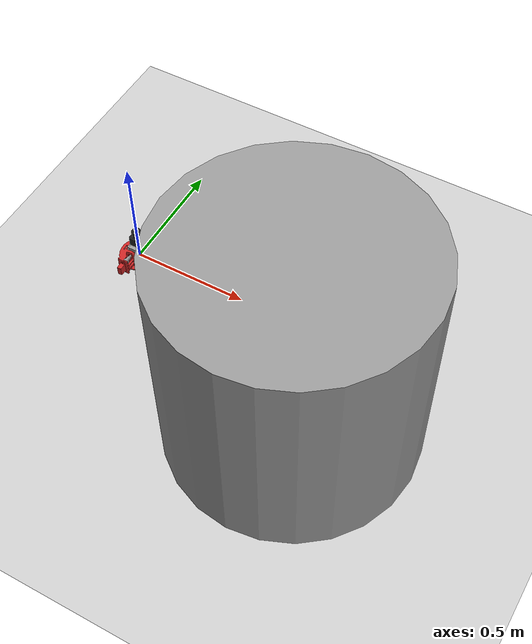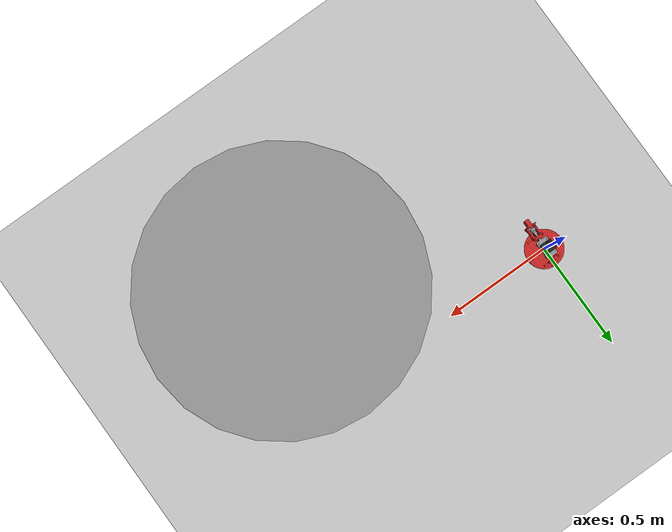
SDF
<sdf version="1.7">
 <world name="default">
  <light name="sun" type="directional">
   <pose>0 0 10 0 -0 0</pose>
   <diffuse>0.8 0.8 0.8 1</diffuse>
   <specular>0.2 0.2 0.2 1</specular>
   <attenuation>
    <range>1000</range>
    <constant>0.9</constant>
    <linear>0.01</linear>
    <quadratic>0.001</quadratic>
   </attenuation>
   <direction>-0.5 0.1 -0.9</direction>
   <spot><inner_angle>0</inner_angle><outer_angle>0</outer_angle><falloff>0</falloff></spot>
  </light>
  <model name="ground_plane">
   <static>1</static>
   <link name="link">
    <collision name="collision">
     <geometry><plane><normal>0 0 1</normal><size>100 100</size></plane></geometry>
     <surface><friction><ode><mu>100</mu><mu2>50</mu2></ode></friction></surface>
    </collision>
    <visual name="visual">
     <cast_shadows>0</cast_shadows>
     <geometry><plane><normal>0 0 1</normal><size>100 100</size></plane></geometry>
     <material>
      <script><uri>file://media/materials/scripts/gazebo.material</uri><name>Gazebo/Grey</name></script>
     </material>
    </visual>
   </link>
  </model>
  <gravity>0 0 -9.8</gravity>
  <magnetic_field>6e-06 2.3e-05 -4.2e-05</magnetic_field>
  <atmosphere type="adiabatic"/>
  <physics type="ode">
   <max_step_size>0.001</max_step_size>
   <real_time_factor>1</real_time_factor>
   <real_time_update_rate>1000</real_time_update_rate>
  </physics>
  <scene><ambient>0.4 0.4 0.4 1</ambient><background>0.7 0.7 0.7 1</background><shadows>1</shadows></scene>
  <audio><device>default</device></audio>
  <spherical_coordinates>
   <surface_model>EARTH_WGS84</surface_model>
   <latitude_deg>0</latitude_deg>
   <longitude_deg>0</longitude_deg>
   <elevation>0</elevation>
   <heading_deg>0</heading_deg>
  </spherical_coordinates>
  <model name="vonns2">
   <joint name="world_joint" type="fixed">
    <pose relative_to="__model__">0 0 0 0 -0 0</pose>
    <parent>world</parent>
    <child>base_link</child>
   </joint>
   <link name="base_link">
    <pose relative_to="world_joint">0 0 0 0 -0 0</pose>
    <inertial>
     <mass>0.3</mass>
     <inertia>
      <ixx>0.00155903</ixx>
      <ixy>0</ixy>
      <ixz>0</ixz>
      <iyy>0.000948383</iyy>
      <iyz>0</iyz>
      <izz>0.00214189</izz>
     </inertia>
    </inertial>
    <collision name="base_link_fixed_joint_lump__base_footprint_collision">
     <geometry><mesh><scale>1 1 1</scale><uri>model://vonns2/meshes/base_footprint.STL</uri></mesh></geometry>
    </collision>
    <visual name="base_link_fixed_joint_lump__base_footprint_visual">
     <geometry><mesh><scale>1 1 1</scale><uri>model://vonns2/meshes/base_footprint.STL</uri></mesh></geometry>
     <material>
      <script><name>Gazebo/Red</name><uri>file://media/materials/scripts/gazebo.material</uri></script>
     </material>
    </visual>
   </link>
   <joint name="servo_joint" type="revolute">
    <pose relative_to="base_link">3.4e-05 0.0007 0.0555 -1.5708 0 0</pose>
    <parent>base_link</parent>
    <child>servo</child>
    <axis>
     <xyz>0 0 1</xyz>
     <limit><lower>-1e+16</lower><upper>1e+16</upper></limit>
     <dynamics>
      <damping>0.1</damping>
      <friction>0.5</friction>
      <spring_reference>0</spring_reference>
      <spring_stiffness>0</spring_stiffness>
     </dynamics>
    </axis>
   </joint>
   <link name="servo">
    <pose relative_to="servo_joint">0 0 0 0 -0 0</pose>
    <inertial>
     <pose>-0.00035 -0.04625 -0.00035 0 -0 0</pose>
     <mass>0.2</mass>
     <inertia>
      <ixx>0.000739694</ixx>
      <ixy>-3.2375e-06</ixy>
      <ixz>-2.45e-08</ixz>
      <iyy>0.0002995</iyy>
      <iyz>-3.2376e-06</iyz>
      <izz>0.000529702</izz>
     </inertia>
    </inertial>
    <collision name="servo_collision">
     <geometry><mesh><scale>1 1 1</scale><uri>model://vonns2/meshes/servo.STL</uri></mesh></geometry>
    </collision>
    <collision name="servo_fixed_joint_lump__laser_collision_1">
     <pose>-0.0007 -0.0925 -0.0007 1.5708 -0 0</pose>
     <geometry><mesh><scale>1 1 1</scale><uri>model://vonns2/meshes/laser.STL</uri></mesh></geometry>
    </collision>
    <visual name="servo_visual">
     <geometry><mesh><scale>1 1 1</scale><uri>model://vonns2/meshes/servo.STL</uri></mesh></geometry>
     <material>
      <script><name>Gazebo/Gray</name><uri>file://media/materials/scripts/gazebo.material</uri></script>
     </material>
    </visual>
    <visual name="servo_fixed_joint_lump__laser_visual_1">
     <pose>-0.0007 -0.0925 -0.0007 1.5708 -0 0</pose>
     <geometry><mesh><scale>1 1 1</scale><uri>model://vonns2/meshes/laser.STL</uri></mesh></geometry>
     <material>
      <script><name>Gazebo/Black</name><uri>file://media/materials/scripts/gazebo.material</uri></script>
     </material>
    </visual>
    <sensor name="laser" type="ray">
     <visualize>1</visualize>
     <update_rate>10</update_rate>
     <ray>
      <scan>
       <horizontal>
        <samples>360</samples>
        <min_angle>-3.14</min_angle>
        <max_angle>3.14</max_angle>
        <resolution>1</resolution>
       </horizontal>
       <vertical><samples>1</samples><min_angle>0</min_angle><max_angle>0</max_angle></vertical>
      </scan>
      <range><min>0.3</min><max>12</max></range>
     </ray>
     <plugin name="laser_controller" filename="libgazebo_ros_ray_sensor.so">
      <ros><argument>~/out:=scan</argument></ros>
      <output_type>sensor_msgs/LaserScan</output_type>
      <frame_name>laser_frame</frame_name>
     </plugin>
     <pose>-0.0007 -0.0925 -0.0007 1.5708 -0 0</pose>
    </sensor>
   </link>
   <static>0</static>
   <plugin name="gazebo_ros2_control" filename="libgazebo_ros2_control.so">
    <robotNamespace>vonns2</robotNamespace>
    <parameters>/home/usuario/Workspaces/personal_ws/install/vonns2/share/vonns2/config/joint_group_position_controller.yaml</parameters>
   </plugin>
  </model>
  <model name="unit_cylinder">
   <pose>0.972641 -0.418788 0.499997 3e-06 4e-06 -0</pose>
   <link name="link">
    <inertial>
     <mass>1</mass>
     <inertia><ixx>0.145833</ixx><ixy>0</ixy><ixz>0</ixz><iyy>0.145833</iyy><iyz>0</iyz><izz>0.125</izz></inertia>
    </inertial>
    <collision name="collision">
     <geometry><cylinder><radius>0.5</radius><length>1</length></cylinder></geometry>
    </collision>
    <visual name="visual">
     <geometry><cylinder><radius>0.5</radius><length>1</length></cylinder></geometry>
     <material>
      <script><name>Gazebo/Grey</name><uri>file://media/materials/scripts/gazebo.material</uri></script>
     </material>
    </visual>
   </link>
  </model>
 </world>
</sdf>
